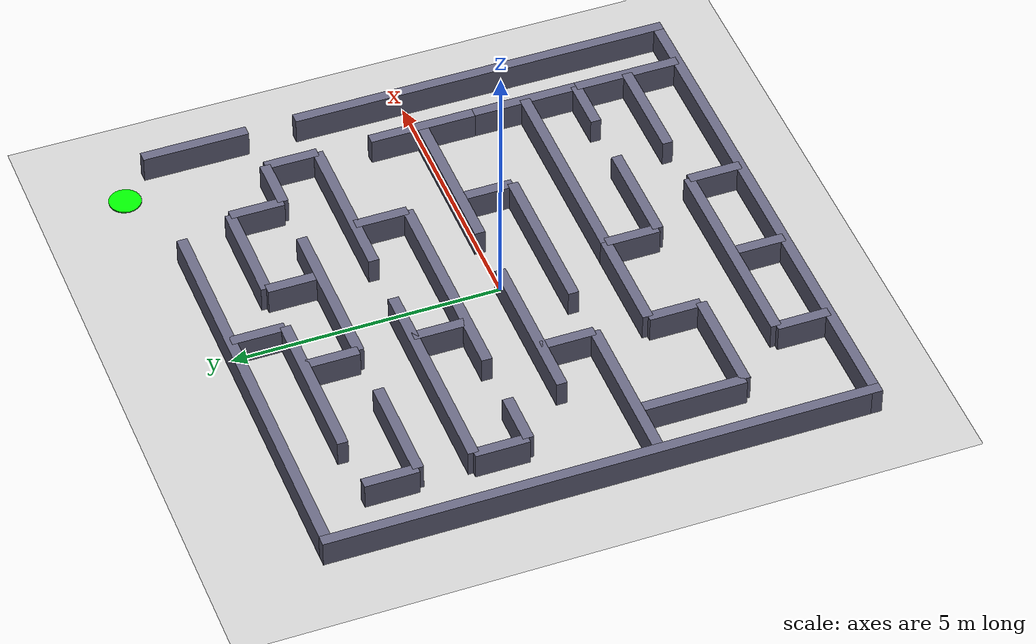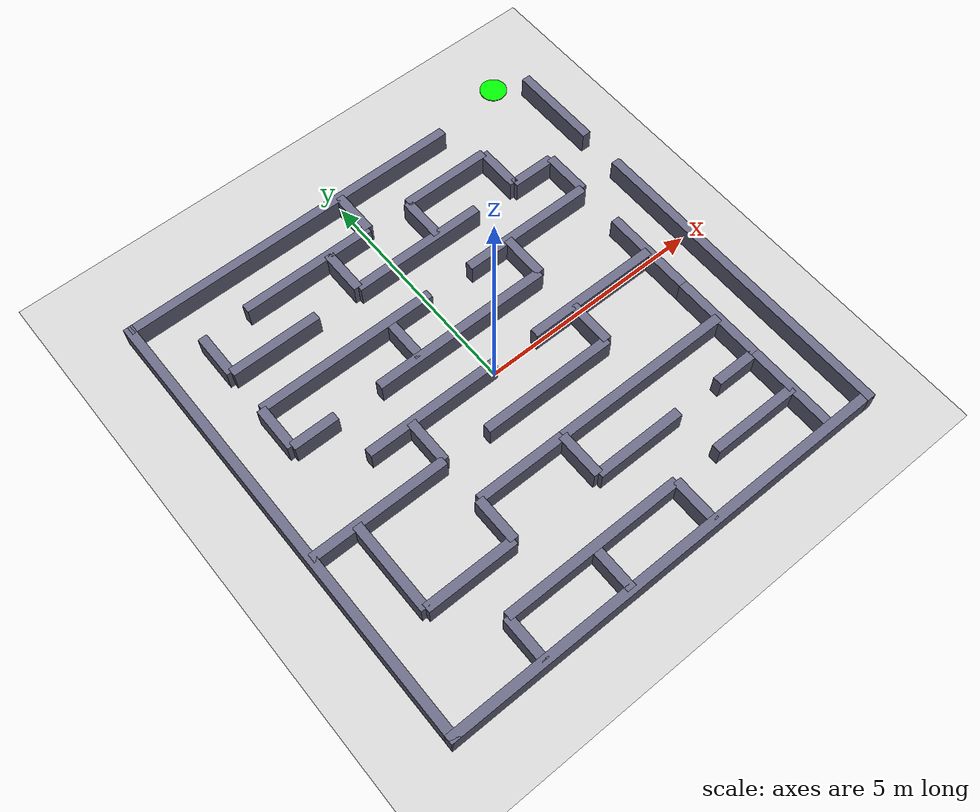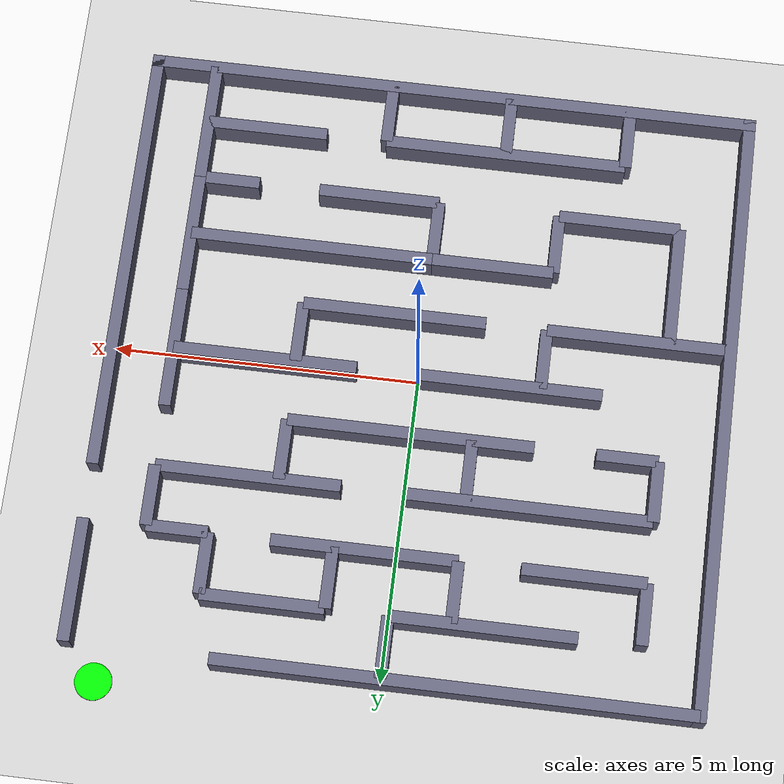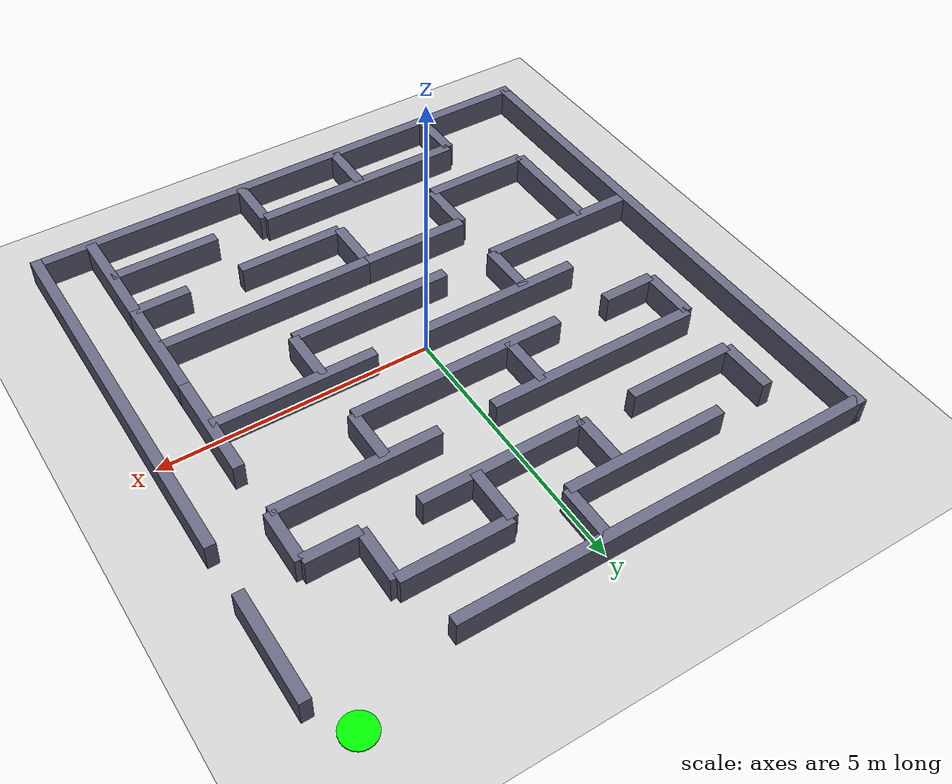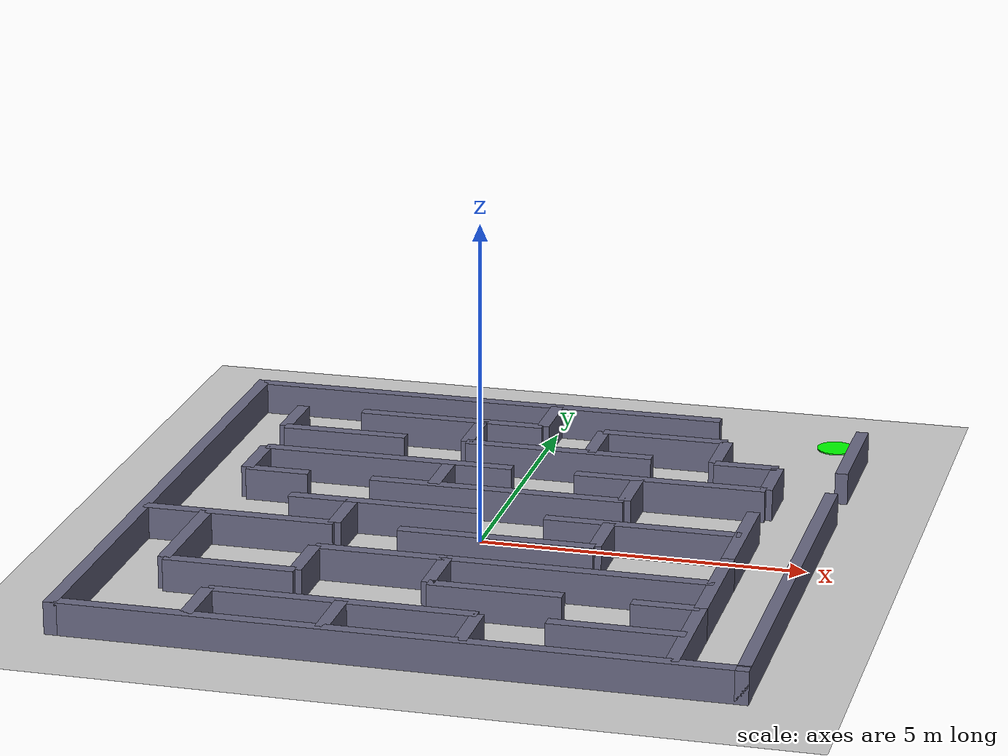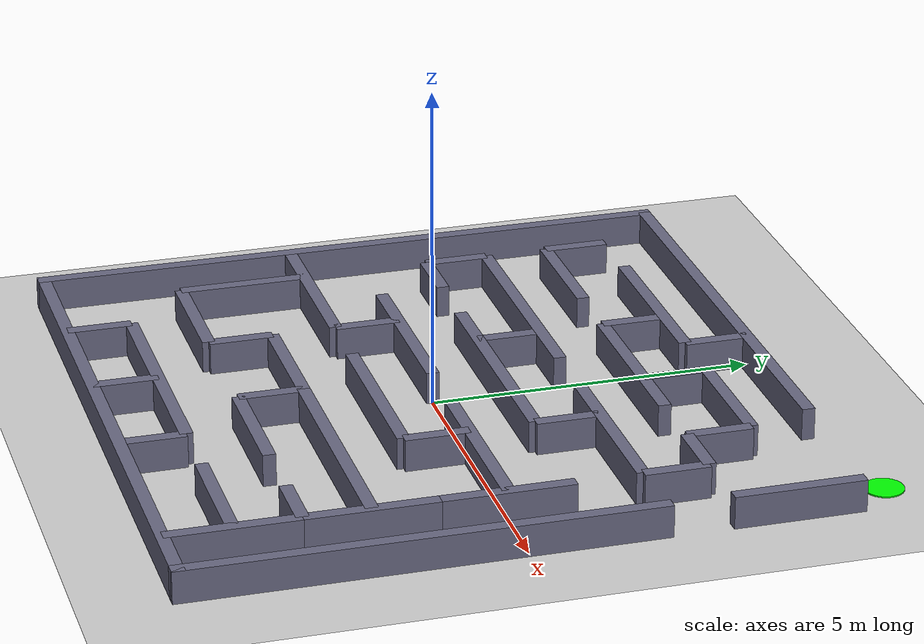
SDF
<sdf version="1.8">
 <world name="course_world">
  <model name="ground_plane">
   <static>true</static>
   <link name="link">
    <collision name="collision">
     <geometry><plane><normal>0 0 1</normal><size>100 100</size></plane></geometry>
    </collision>
    <visual name="visual">
     <geometry><plane><normal>0 0 1</normal><size>100 100</size></plane></geometry>
     <material>
      <ambient>0.8 0.8 0.8 1</ambient>
      <diffuse>0.8 0.8 0.8 1</diffuse>
      <specular>0.8 0.8 0.8 1</specular>
     </material>
    </visual>
   </link>
  </model>
  <model name="wall_1">
   <static>true</static>
   <pose>0 -5 0.25 0 0 0.0</pose>
   <link name="link">
    <collision name="collision"><geometry><box><size>10.2 0.2 0.5</size></box></geometry></collision>
    <visual name="visual">
     <geometry><box><size>10.2 0.2 0.5</size></box></geometry>
     <material><ambient>0.4 0.4 0.5 1</ambient><diffuse>0.4 0.4 0.5 1</diffuse></material>
    </visual>
   </link>
  </model>
  <model name="wall_2">
   <static>true</static>
   <pose>-1.15 5 0.25 0 0 0.0</pose>
   <link name="link">
    <collision name="collision"><geometry><box><size>7.7 0.2 0.5</size></box></geometry></collision>
    <visual name="visual">
     <geometry><box><size>7.7 0.2 0.5</size></box></geometry>
     <material><ambient>0.4 0.4 0.5 1</ambient><diffuse>0.4 0.4 0.5 1</diffuse></material>
    </visual>
   </link>
  </model>
  <model name="wall_3">
   <static>true</static>
   <pose>-5 0 0.25 0 0 1.5708</pose>
   <link name="link">
    <collision name="collision"><geometry><box><size>10.2 0.2 0.5</size></box></geometry></collision>
    <visual name="visual">
     <geometry><box><size>10.2 0.2 0.5</size></box></geometry>
     <material><ambient>0.4 0.4 0.5 1</ambient><diffuse>0.4 0.4 0.5 1</diffuse></material>
    </visual>
   </link>
  </model>
  <model name="wall_4">
   <static>true</static>
   <pose>5 -1.5 0.25 0 0 1.5708</pose>
   <link name="link">
    <collision name="collision"><geometry><box><size>7.2 0.2 0.5</size></box></geometry></collision>
    <visual name="visual">
     <geometry><box><size>7.2 0.2 0.5</size></box></geometry>
     <material><ambient>0.4 0.4 0.5 1</ambient><diffuse>0.4 0.4 0.5 1</diffuse></material>
    </visual>
   </link>
  </model>
  <model name="wall_5">
   <static>true</static>
   <pose>5 4.0 0.25 0 0 1.5708</pose>
   <link name="link">
    <collision name="collision"><geometry><box><size>2.0 0.2 0.5</size></box></geometry></collision>
    <visual name="visual">
     <geometry><box><size>2.0 0.2 0.5</size></box></geometry>
     <material><ambient>0.4 0.4 0.5 1</ambient><diffuse>0.4 0.4 0.5 1</diffuse></material>
    </visual>
   </link>
  </model>
  <model name="wall_6">
   <static>true</static>
   <pose>-1.0 -4 0.25 0 0 0.0</pose>
   <link name="link">
    <collision name="collision"><geometry><box><size>4.0 0.2 0.5</size></box></geometry></collision>
    <visual name="visual">
     <geometry><box><size>4.0 0.2 0.5</size></box></geometry>
     <material><ambient>0.4 0.4 0.5 1</ambient><diffuse>0.4 0.4 0.5 1</diffuse></material>
    </visual>
   </link>
  </model>
  <model name="wall_7">
   <static>true</static>
   <pose>3.0 -4 0.25 0 0 0.0</pose>
   <link name="link">
    <collision name="collision"><geometry><box><size>2.0 0.2 0.5</size></box></geometry></collision>
    <visual name="visual">
     <geometry><box><size>2.0 0.2 0.5</size></box></geometry>
     <material><ambient>0.4 0.4 0.5 1</ambient><diffuse>0.4 0.4 0.5 1</diffuse></material>
    </visual>
   </link>
  </model>
  <model name="wall_8">
   <static>true</static>
   <pose>-3.0 -3 0.25 0 0 0.0</pose>
   <link name="link">
    <collision name="collision"><geometry><box><size>2.0 0.2 0.5</size></box></geometry></collision>
    <visual name="visual">
     <geometry><box><size>2.0 0.2 0.5</size></box></geometry>
     <material><ambient>0.4 0.4 0.5 1</ambient><diffuse>0.4 0.4 0.5 1</diffuse></material>
    </visual>
   </link>
  </model>
  <model name="wall_9">
   <static>true</static>
   <pose>1.0 -3 0.25 0 0 0.0</pose>
   <link name="link">
    <collision name="collision"><geometry><box><size>2.0 0.2 0.5</size></box></geometry></collision>
    <visual name="visual">
     <geometry><box><size>2.0 0.2 0.5</size></box></geometry>
     <material><ambient>0.4 0.4 0.5 1</ambient><diffuse>0.4 0.4 0.5 1</diffuse></material>
    </visual>
   </link>
  </model>
  <model name="wall_10">
   <static>true</static>
   <pose>3.5 -3 0.25 0 0 0.0</pose>
   <link name="link">
    <collision name="collision"><geometry><box><size>1.0 0.2 0.5</size></box></geometry></collision>
    <visual name="visual">
     <geometry><box><size>1.0 0.2 0.5</size></box></geometry>
     <material><ambient>0.4 0.4 0.5 1</ambient><diffuse>0.4 0.4 0.5 1</diffuse></material>
    </visual>
   </link>
  </model>
  <model name="wall_11">
   <static>true</static>
   <pose>-1.0 -2 0.25 0 0 0.0</pose>
   <link name="link">
    <collision name="collision"><geometry><box><size>2.0 0.2 0.5</size></box></geometry></collision>
    <visual name="visual">
     <geometry><box><size>2.0 0.2 0.5</size></box></geometry>
     <material><ambient>0.4 0.4 0.5 1</ambient><diffuse>0.4 0.4 0.5 1</diffuse></material>
    </visual>
   </link>
  </model>
  <model name="wall_12">
   <static>true</static>
   <pose>2.0 -2 0.25 0 0 0.0</pose>
   <link name="link">
    <collision name="collision"><geometry><box><size>4.0 0.2 0.5</size></box></geometry></collision>
    <visual name="visual">
     <geometry><box><size>4.0 0.2 0.5</size></box></geometry>
     <material><ambient>0.4 0.4 0.5 1</ambient><diffuse>0.4 0.4 0.5 1</diffuse></material>
    </visual>
   </link>
  </model>
  <model name="wall_13">
   <static>true</static>
   <pose>-3.5 -1 0.25 0 0 0.0</pose>
   <link name="link">
    <collision name="collision"><geometry><box><size>3.0 0.2 0.5</size></box></geometry></collision>
    <visual name="visual">
     <geometry><box><size>3.0 0.2 0.5</size></box></geometry>
     <material><ambient>0.4 0.4 0.5 1</ambient><diffuse>0.4 0.4 0.5 1</diffuse></material>
    </visual>
   </link>
  </model>
  <model name="wall_14">
   <static>true</static>
   <pose>0.5 -1 0.25 0 0 0.0</pose>
   <link name="link">
    <collision name="collision"><geometry><box><size>3.0 0.2 0.5</size></box></geometry></collision>
    <visual name="visual">
     <geometry><box><size>3.0 0.2 0.5</size></box></geometry>
     <material><ambient>0.4 0.4 0.5 1</ambient><diffuse>0.4 0.4 0.5 1</diffuse></material>
    </visual>
   </link>
  </model>
  <model name="wall_15">
   <static>true</static>
   <pose>-1.5 0 0.25 0 0 0.0</pose>
   <link name="link">
    <collision name="collision"><geometry><box><size>3.0 0.2 0.5</size></box></geometry></collision>
    <visual name="visual">
     <geometry><box><size>3.0 0.2 0.5</size></box></geometry>
     <material><ambient>0.4 0.4 0.5 1</ambient><diffuse>0.4 0.4 0.5 1</diffuse></material>
    </visual>
   </link>
  </model>
  <model name="wall_16">
   <static>true</static>
   <pose>2.5 0 0.25 0 0 0.0</pose>
   <link name="link">
    <collision name="collision"><geometry><box><size>3.0 0.2 0.5</size></box></geometry></collision>
    <visual name="visual">
     <geometry><box><size>3.0 0.2 0.5</size></box></geometry>
     <material><ambient>0.4 0.4 0.5 1</ambient><diffuse>0.4 0.4 0.5 1</diffuse></material>
    </visual>
   </link>
  </model>
  <model name="wall_17">
   <static>true</static>
   <pose>-3.5 1 0.25 0 0 0.0</pose>
   <link name="link">
    <collision name="collision"><geometry><box><size>1.0 0.2 0.5</size></box></geometry></collision>
    <visual name="visual">
     <geometry><box><size>1.0 0.2 0.5</size></box></geometry>
     <material><ambient>0.4 0.4 0.5 1</ambient><diffuse>0.4 0.4 0.5 1</diffuse></material>
    </visual>
   </link>
  </model>
  <model name="wall_18">
   <static>true</static>
   <pose>0.0 1 0.25 0 0 0.0</pose>
   <link name="link">
    <collision name="collision"><geometry><box><size>4.0 0.2 0.5</size></box></geometry></collision>
    <visual name="visual">
     <geometry><box><size>4.0 0.2 0.5</size></box></geometry>
     <material><ambient>0.4 0.4 0.5 1</ambient><diffuse>0.4 0.4 0.5 1</diffuse></material>
    </visual>
   </link>
  </model>
  <model name="wall_19">
   <static>true</static>
   <pose>-2.0 2 0.25 0 0 0.0</pose>
   <link name="link">
    <collision name="collision"><geometry><box><size>4.0 0.2 0.5</size></box></geometry></collision>
    <visual name="visual">
     <geometry><box><size>4.0 0.2 0.5</size></box></geometry>
     <material><ambient>0.4 0.4 0.5 1</ambient><diffuse>0.4 0.4 0.5 1</diffuse></material>
    </visual>
   </link>
  </model>
  <model name="wall_20">
   <static>true</static>
   <pose>2.5 2 0.25 0 0 0.0</pose>
   <link name="link">
    <collision name="collision"><geometry><box><size>3.0 0.2 0.5</size></box></geometry></collision>
    <visual name="visual">
     <geometry><box><size>3.0 0.2 0.5</size></box></geometry>
     <material><ambient>0.4 0.4 0.5 1</ambient><diffuse>0.4 0.4 0.5 1</diffuse></material>
    </visual>
   </link>
  </model>
  <model name="wall_21">
   <static>true</static>
   <pose>-3.0 3 0.25 0 0 0.0</pose>
   <link name="link">
    <collision name="collision"><geometry><box><size>2.0 0.2 0.5</size></box></geometry></collision>
    <visual name="visual">
     <geometry><box><size>2.0 0.2 0.5</size></box></geometry>
     <material><ambient>0.4 0.4 0.5 1</ambient><diffuse>0.4 0.4 0.5 1</diffuse></material>
    </visual>
   </link>
  </model>
  <model name="wall_22">
   <static>true</static>
   <pose>0.5 3 0.25 0 0 0.0</pose>
   <link name="link">
    <collision name="collision"><geometry><box><size>3.0 0.2 0.5</size></box></geometry></collision>
    <visual name="visual">
     <geometry><box><size>3.0 0.2 0.5</size></box></geometry>
     <material><ambient>0.4 0.4 0.5 1</ambient><diffuse>0.4 0.4 0.5 1</diffuse></material>
    </visual>
   </link>
  </model>
  <model name="wall_23">
   <static>true</static>
   <pose>3.5 3 0.25 0 0 0.0</pose>
   <link name="link">
    <collision name="collision"><geometry><box><size>1.0 0.2 0.5</size></box></geometry></collision>
    <visual name="visual">
     <geometry><box><size>1.0 0.2 0.5</size></box></geometry>
     <material><ambient>0.4 0.4 0.5 1</ambient><diffuse>0.4 0.4 0.5 1</diffuse></material>
    </visual>
   </link>
  </model>
  <model name="wall_24">
   <static>true</static>
   <pose>-1.5 4 0.25 0 0 0.0</pose>
   <link name="link">
    <collision name="collision"><geometry><box><size>3.0 0.2 0.5</size></box></geometry></collision>
    <visual name="visual">
     <geometry><box><size>3.0 0.2 0.5</size></box></geometry>
     <material><ambient>0.4 0.4 0.5 1</ambient><diffuse>0.4 0.4 0.5 1</diffuse></material>
    </visual>
   </link>
  </model>
  <model name="wall_25">
   <static>true</static>
   <pose>2.0 4 0.25 0 0 0.0</pose>
   <link name="link">
    <collision name="collision"><geometry><box><size>2.0 0.2 0.5</size></box></geometry></collision>
    <visual name="visual">
     <geometry><box><size>2.0 0.2 0.5</size></box></geometry>
     <material><ambient>0.4 0.4 0.5 1</ambient><diffuse>0.4 0.4 0.5 1</diffuse></material>
    </visual>
   </link>
  </model>
  <model name="wall_26">
   <static>true</static>
   <pose>-3.0 -4.5 0.25 0 0 1.5708</pose>
   <link name="link">
    <collision name="collision"><geometry><box><size>1.0 0.2 0.5</size></box></geometry></collision>
    <visual name="visual">
     <geometry><box><size>1.0 0.2 0.5</size></box></geometry>
     <material><ambient>0.4 0.4 0.5 1</ambient><diffuse>0.4 0.4 0.5 1</diffuse></material>
    </visual>
   </link>
  </model>
  <model name="wall_27">
   <static>true</static>
   <pose>-1.0 -4.5 0.25 0 0 1.5708</pose>
   <link name="link">
    <collision name="collision"><geometry><box><size>1.0 0.2 0.5</size></box></geometry></collision>
    <visual name="visual">
     <geometry><box><size>1.0 0.2 0.5</size></box></geometry>
     <material><ambient>0.4 0.4 0.5 1</ambient><diffuse>0.4 0.4 0.5 1</diffuse></material>
    </visual>
   </link>
  </model>
  <model name="wall_28">
   <static>true</static>
   <pose>1.0 -4.5 0.25 0 0 1.5708</pose>
   <link name="link">
    <collision name="collision"><geometry><box><size>1.0 0.2 0.5</size></box></geometry></collision>
    <visual name="visual">
     <geometry><box><size>1.0 0.2 0.5</size></box></geometry>
     <material><ambient>0.4 0.4 0.5 1</ambient><diffuse>0.4 0.4 0.5 1</diffuse></material>
    </visual>
   </link>
  </model>
  <model name="wall_29">
   <static>true</static>
   <pose>4.0 -4.0 0.25 0 0 1.5708</pose>
   <link name="link">
    <collision name="collision"><geometry><box><size>2.0 0.2 0.5</size></box></geometry></collision>
    <visual name="visual">
     <geometry><box><size>2.0 0.2 0.5</size></box></geometry>
     <material><ambient>0.4 0.4 0.5 1</ambient><diffuse>0.4 0.4 0.5 1</diffuse></material>
    </visual>
   </link>
  </model>
  <model name="wall_30">
   <static>true</static>
   <pose>-4.0 -2.0 0.25 0 0 1.5708</pose>
   <link name="link">
    <collision name="collision"><geometry><box><size>2.0 0.2 0.5</size></box></geometry></collision>
    <visual name="visual">
     <geometry><box><size>2.0 0.2 0.5</size></box></geometry>
     <material><ambient>0.4 0.4 0.5 1</ambient><diffuse>0.4 0.4 0.5 1</diffuse></material>
    </visual>
   </link>
  </model>
  <model name="wall_31">
   <static>true</static>
   <pose>-2.0 -2.5 0.25 0 0 1.5708</pose>
   <link name="link">
    <collision name="collision"><geometry><box><size>1.0 0.2 0.5</size></box></geometry></collision>
    <visual name="visual">
     <geometry><box><size>1.0 0.2 0.5</size></box></geometry>
     <material><ambient>0.4 0.4 0.5 1</ambient><diffuse>0.4 0.4 0.5 1</diffuse></material>
    </visual>
   </link>
  </model>
  <model name="wall_32">
   <static>true</static>
   <pose>0.0 -2.5 0.25 0 0 1.5708</pose>
   <link name="link">
    <collision name="collision"><geometry><box><size>1.0 0.2 0.5</size></box></geometry></collision>
    <visual name="visual">
     <geometry><box><size>1.0 0.2 0.5</size></box></geometry>
     <material><ambient>0.4 0.4 0.5 1</ambient><diffuse>0.4 0.4 0.5 1</diffuse></material>
    </visual>
   </link>
  </model>
  <model name="wall_33">
   <static>true</static>
   <pose>4.0 -2.0 0.25 0 0 1.5708</pose>
   <link name="link">
    <collision name="collision"><geometry><box><size>2.0 0.2 0.5</size></box></geometry></collision>
    <visual name="visual">
     <geometry><box><size>2.0 0.2 0.5</size></box></geometry>
     <material><ambient>0.4 0.4 0.5 1</ambient><diffuse>0.4 0.4 0.5 1</diffuse></material>
    </visual>
   </link>
  </model>
  <model name="wall_34">
   <static>true</static>
   <pose>-2.0 -0.5 0.25 0 0 1.5708</pose>
   <link name="link">
    <collision name="collision"><geometry><box><size>1.0 0.2 0.5</size></box></geometry></collision>
    <visual name="visual">
     <geometry><box><size>1.0 0.2 0.5</size></box></geometry>
     <material><ambient>0.4 0.4 0.5 1</ambient><diffuse>0.4 0.4 0.5 1</diffuse></material>
    </visual>
   </link>
  </model>
  <model name="wall_35">
   <static>true</static>
   <pose>2.0 -0.5 0.25 0 0 1.5708</pose>
   <link name="link">
    <collision name="collision"><geometry><box><size>1.0 0.2 0.5</size></box></geometry></collision>
    <visual name="visual">
     <geometry><box><size>1.0 0.2 0.5</size></box></geometry>
     <material><ambient>0.4 0.4 0.5 1</ambient><diffuse>0.4 0.4 0.5 1</diffuse></material>
    </visual>
   </link>
  </model>
  <model name="wall_36">
   <static>true</static>
   <pose>4.0 0.0 0.25 0 0 1.5708</pose>
   <link name="link">
    <collision name="collision"><geometry><box><size>2.0 0.2 0.5</size></box></geometry></collision>
    <visual name="visual">
     <geometry><box><size>2.0 0.2 0.5</size></box></geometry>
     <material><ambient>0.4 0.4 0.5 1</ambient><diffuse>0.4 0.4 0.5 1</diffuse></material>
    </visual>
   </link>
  </model>
  <model name="wall_37">
   <static>true</static>
   <pose>-4.0 1.5 0.25 0 0 1.5708</pose>
   <link name="link">
    <collision name="collision"><geometry><box><size>1.0 0.2 0.5</size></box></geometry></collision>
    <visual name="visual">
     <geometry><box><size>1.0 0.2 0.5</size></box></geometry>
     <material><ambient>0.4 0.4 0.5 1</ambient><diffuse>0.4 0.4 0.5 1</diffuse></material>
    </visual>
   </link>
  </model>
  <model name="wall_38">
   <static>true</static>
   <pose>-1.0 1.5 0.25 0 0 1.5708</pose>
   <link name="link">
    <collision name="collision"><geometry><box><size>1.0 0.2 0.5</size></box></geometry></collision>
    <visual name="visual">
     <geometry><box><size>1.0 0.2 0.5</size></box></geometry>
     <material><ambient>0.4 0.4 0.5 1</ambient><diffuse>0.4 0.4 0.5 1</diffuse></material>
    </visual>
   </link>
  </model>
  <model name="wall_39">
   <static>true</static>
   <pose>2.0 1.5 0.25 0 0 1.5708</pose>
   <link name="link">
    <collision name="collision"><geometry><box><size>1.0 0.2 0.5</size></box></geometry></collision>
    <visual name="visual">
     <geometry><box><size>1.0 0.2 0.5</size></box></geometry>
     <material><ambient>0.4 0.4 0.5 1</ambient><diffuse>0.4 0.4 0.5 1</diffuse></material>
    </visual>
   </link>
  </model>
  <model name="wall_40">
   <static>true</static>
   <pose>4.0 2.5 0.25 0 0 1.5708</pose>
   <link name="link">
    <collision name="collision"><geometry><box><size>1.0 0.2 0.5</size></box></geometry></collision>
    <visual name="visual">
     <geometry><box><size>1.0 0.2 0.5</size></box></geometry>
     <material><ambient>0.4 0.4 0.5 1</ambient><diffuse>0.4 0.4 0.5 1</diffuse></material>
    </visual>
   </link>
  </model>
  <model name="wall_41">
   <static>true</static>
   <pose>-4.0 3.5 0.25 0 0 1.5708</pose>
   <link name="link">
    <collision name="collision"><geometry><box><size>1.0 0.2 0.5</size></box></geometry></collision>
    <visual name="visual">
     <geometry><box><size>1.0 0.2 0.5</size></box></geometry>
     <material><ambient>0.4 0.4 0.5 1</ambient><diffuse>0.4 0.4 0.5 1</diffuse></material>
    </visual>
   </link>
  </model>
  <model name="wall_42">
   <static>true</static>
   <pose>-1.0 3.5 0.25 0 0 1.5708</pose>
   <link name="link">
    <collision name="collision"><geometry><box><size>1.0 0.2 0.5</size></box></geometry></collision>
    <visual name="visual">
     <geometry><box><size>1.0 0.2 0.5</size></box></geometry>
     <material><ambient>0.4 0.4 0.5 1</ambient><diffuse>0.4 0.4 0.5 1</diffuse></material>
    </visual>
   </link>
  </model>
  <model name="wall_43">
   <static>true</static>
   <pose>1.0 3.5 0.25 0 0 1.5708</pose>
   <link name="link">
    <collision name="collision"><geometry><box><size>1.0 0.2 0.5</size></box></geometry></collision>
    <visual name="visual">
     <geometry><box><size>1.0 0.2 0.5</size></box></geometry>
     <material><ambient>0.4 0.4 0.5 1</ambient><diffuse>0.4 0.4 0.5 1</diffuse></material>
    </visual>
   </link>
  </model>
  <model name="wall_44">
   <static>true</static>
   <pose>3.0 3.5 0.25 0 0 1.5708</pose>
   <link name="link">
    <collision name="collision"><geometry><box><size>1.0 0.2 0.5</size></box></geometry></collision>
    <visual name="visual">
     <geometry><box><size>1.0 0.2 0.5</size></box></geometry>
     <material><ambient>0.4 0.4 0.5 1</ambient><diffuse>0.4 0.4 0.5 1</diffuse></material>
    </visual>
   </link>
  </model>
  <model name="wall_45">
   <static>true</static>
   <pose>0.0 4.5 0.25 0 0 1.5708</pose>
   <link name="link">
    <collision name="collision"><geometry><box><size>1.0 0.2 0.5</size></box></geometry></collision>
    <visual name="visual">
     <geometry><box><size>1.0 0.2 0.5</size></box></geometry>
     <material><ambient>0.4 0.4 0.5 1</ambient><diffuse>0.4 0.4 0.5 1</diffuse></material>
    </visual>
   </link>
  </model>
  <model name="goal_marker">
   <static>true</static>
   <pose>4.5 5.5 0.01 0 0 0</pose>
   <link name="link">
    <visual name="visual">
     <geometry><cylinder><radius>0.3</radius><length>0.02</length></cylinder></geometry>
     <material><ambient>0 1 0 1</ambient><diffuse>0 1 0 1</diffuse></material>
    </visual>
   </link>
  </model>
 </world>
</sdf>
